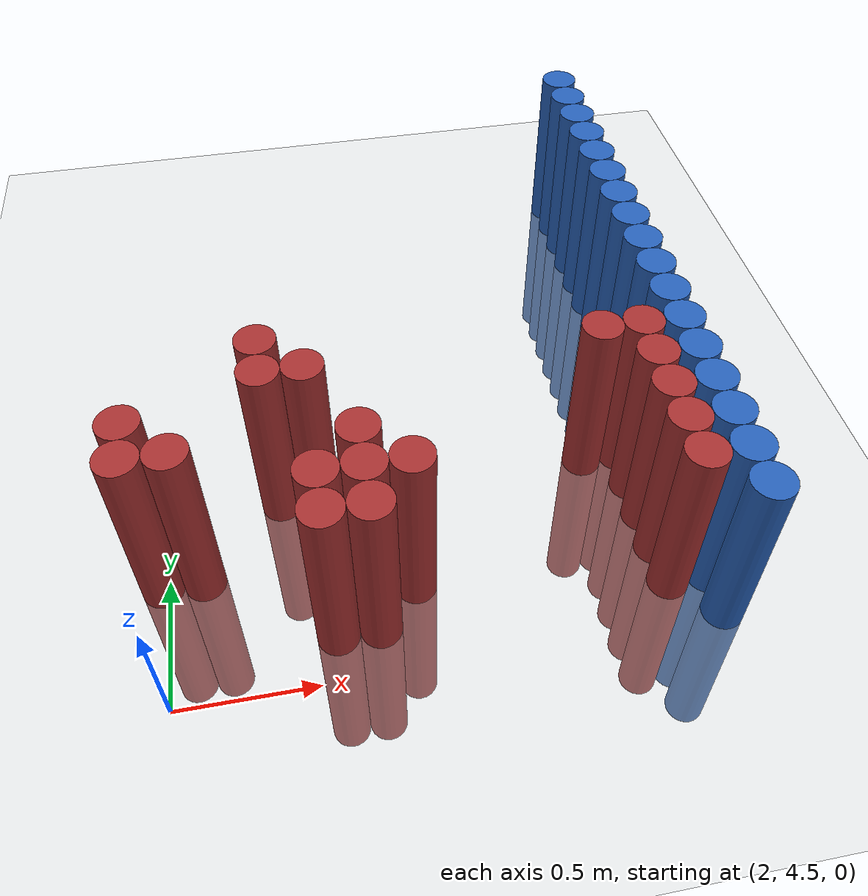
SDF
<sdf version="1.6">
 <world name="default">
  <model name="ground_plane">
   <static>1</static>
   <link name="link">
    <collision name="collision">
     <geometry><plane><normal>0 0 1</normal><size>100 100</size></plane></geometry>
     <surface><friction><ode><mu>100</mu><mu2>50</mu2></ode></friction></surface>
    </collision>
    <visual name="visual">
     <cast_shadows>0</cast_shadows>
     <geometry><plane><normal>0 0 1</normal><size>100 100</size></plane></geometry>
     <material>
      <script><uri>file://media/materials/scripts/gazebo.material</uri><name>Gazebo/Grey</name></script>
     </material>
    </visual>
   </link>
  </model>
  <model name="unit_cylinder_176">
   <static>1</static>
   <pose>3.925000 4.675000 0.000000 0.000000 0.000000 0.000000</pose>
   <link name="link">
    <inertial>
     <mass>1</mass>
     <inertia><ixx>0.145833</ixx><ixy>0</ixy><ixz>0</ixz><iyy>0.145833</iyy><iyz>0</iyz><izz>0.125</izz></inertia>
    </inertial>
    <collision name="collision">
     <geometry><cylinder><radius>0.075000</radius><length>1.5</length></cylinder></geometry>
    </collision>
    <visual name="visual">
     <geometry><cylinder><radius>0.075000</radius><length>1.5</length></cylinder></geometry>
     <material>
      <ambient>0.152000 0.379000 0.720000 1</ambient>
      <diffuse>0.152000 0.379000 0.720000 1</diffuse>
     </material>
     <material>
      <script><name>Gazebo/Grey</name><uri>file://media/materials/scripts/gazebo.material</uri></script>
     </material>
    </visual>
   </link>
  </model>
  <model name="unit_cylinder_178">
   <static>1</static>
   <pose>3.925000 4.825000 0.000000 0.000000 0.000000 0.000000</pose>
   <link name="link">
    <inertial>
     <mass>1</mass>
     <inertia><ixx>0.145833</ixx><ixy>0</ixy><ixz>0</ixz><iyy>0.145833</iyy><iyz>0</iyz><izz>0.125</izz></inertia>
    </inertial>
    <collision name="collision">
     <geometry><cylinder><radius>0.075000</radius><length>1.5</length></cylinder></geometry>
    </collision>
    <visual name="visual">
     <geometry><cylinder><radius>0.075000</radius><length>1.5</length></cylinder></geometry>
     <material>
      <ambient>0.152000 0.379000 0.720000 1</ambient>
      <diffuse>0.152000 0.379000 0.720000 1</diffuse>
     </material>
     <material>
      <script><name>Gazebo/Grey</name><uri>file://media/materials/scripts/gazebo.material</uri></script>
     </material>
    </visual>
   </link>
  </model>
  <model name="unit_cylinder_180">
   <static>1</static>
   <pose>3.925000 4.975000 0.000000 0.000000 0.000000 0.000000</pose>
   <link name="link">
    <inertial>
     <mass>1</mass>
     <inertia><ixx>0.145833</ixx><ixy>0</ixy><ixz>0</ixz><iyy>0.145833</iyy><iyz>0</iyz><izz>0.125</izz></inertia>
    </inertial>
    <collision name="collision">
     <geometry><cylinder><radius>0.075000</radius><length>1.5</length></cylinder></geometry>
    </collision>
    <visual name="visual">
     <geometry><cylinder><radius>0.075000</radius><length>1.5</length></cylinder></geometry>
     <material>
      <ambient>0.152000 0.379000 0.720000 1</ambient>
      <diffuse>0.152000 0.379000 0.720000 1</diffuse>
     </material>
     <material>
      <script><name>Gazebo/Grey</name><uri>file://media/materials/scripts/gazebo.material</uri></script>
     </material>
    </visual>
   </link>
  </model>
  <model name="unit_cylinder_182">
   <static>1</static>
   <pose>3.925000 5.125000 0.000000 0.000000 0.000000 0.000000</pose>
   <link name="link">
    <inertial>
     <mass>1</mass>
     <inertia><ixx>0.145833</ixx><ixy>0</ixy><ixz>0</ixz><iyy>0.145833</iyy><iyz>0</iyz><izz>0.125</izz></inertia>
    </inertial>
    <collision name="collision">
     <geometry><cylinder><radius>0.075000</radius><length>1.5</length></cylinder></geometry>
    </collision>
    <visual name="visual">
     <geometry><cylinder><radius>0.075000</radius><length>1.5</length></cylinder></geometry>
     <material>
      <ambient>0.152000 0.379000 0.720000 1</ambient>
      <diffuse>0.152000 0.379000 0.720000 1</diffuse>
     </material>
     <material>
      <script><name>Gazebo/Grey</name><uri>file://media/materials/scripts/gazebo.material</uri></script>
     </material>
    </visual>
   </link>
  </model>
  <model name="unit_cylinder_184">
   <static>1</static>
   <pose>3.925000 5.275000 0.000000 0.000000 0.000000 0.000000</pose>
   <link name="link">
    <inertial>
     <mass>1</mass>
     <inertia><ixx>0.145833</ixx><ixy>0</ixy><ixz>0</ixz><iyy>0.145833</iyy><iyz>0</iyz><izz>0.125</izz></inertia>
    </inertial>
    <collision name="collision">
     <geometry><cylinder><radius>0.075000</radius><length>1.5</length></cylinder></geometry>
    </collision>
    <visual name="visual">
     <geometry><cylinder><radius>0.075000</radius><length>1.5</length></cylinder></geometry>
     <material>
      <ambient>0.152000 0.379000 0.720000 1</ambient>
      <diffuse>0.152000 0.379000 0.720000 1</diffuse>
     </material>
     <material>
      <script><name>Gazebo/Grey</name><uri>file://media/materials/scripts/gazebo.material</uri></script>
     </material>
    </visual>
   </link>
  </model>
  <model name="unit_cylinder_186">
   <static>1</static>
   <pose>3.925000 5.425000 0.000000 0.000000 0.000000 0.000000</pose>
   <link name="link">
    <inertial>
     <mass>1</mass>
     <inertia><ixx>0.145833</ixx><ixy>0</ixy><ixz>0</ixz><iyy>0.145833</iyy><iyz>0</iyz><izz>0.125</izz></inertia>
    </inertial>
    <collision name="collision">
     <geometry><cylinder><radius>0.075000</radius><length>1.5</length></cylinder></geometry>
    </collision>
    <visual name="visual">
     <geometry><cylinder><radius>0.075000</radius><length>1.5</length></cylinder></geometry>
     <material>
      <ambient>0.152000 0.379000 0.720000 1</ambient>
      <diffuse>0.152000 0.379000 0.720000 1</diffuse>
     </material>
     <material>
      <script><name>Gazebo/Grey</name><uri>file://media/materials/scripts/gazebo.material</uri></script>
     </material>
    </visual>
   </link>
  </model>
  <model name="unit_cylinder_188">
   <static>1</static>
   <pose>3.925000 5.575000 0.000000 0.000000 0.000000 0.000000</pose>
   <link name="link">
    <inertial>
     <mass>1</mass>
     <inertia><ixx>0.145833</ixx><ixy>0</ixy><ixz>0</ixz><iyy>0.145833</iyy><iyz>0</iyz><izz>0.125</izz></inertia>
    </inertial>
    <collision name="collision">
     <geometry><cylinder><radius>0.075000</radius><length>1.5</length></cylinder></geometry>
    </collision>
    <visual name="visual">
     <geometry><cylinder><radius>0.075000</radius><length>1.5</length></cylinder></geometry>
     <material>
      <ambient>0.152000 0.379000 0.720000 1</ambient>
      <diffuse>0.152000 0.379000 0.720000 1</diffuse>
     </material>
     <material>
      <script><name>Gazebo/Grey</name><uri>file://media/materials/scripts/gazebo.material</uri></script>
     </material>
    </visual>
   </link>
  </model>
  <model name="unit_cylinder_190">
   <static>1</static>
   <pose>3.925000 5.725000 0.000000 0.000000 0.000000 0.000000</pose>
   <link name="link">
    <inertial>
     <mass>1</mass>
     <inertia><ixx>0.145833</ixx><ixy>0</ixy><ixz>0</ixz><iyy>0.145833</iyy><iyz>0</iyz><izz>0.125</izz></inertia>
    </inertial>
    <collision name="collision">
     <geometry><cylinder><radius>0.075000</radius><length>1.5</length></cylinder></geometry>
    </collision>
    <visual name="visual">
     <geometry><cylinder><radius>0.075000</radius><length>1.5</length></cylinder></geometry>
     <material>
      <ambient>0.152000 0.379000 0.720000 1</ambient>
      <diffuse>0.152000 0.379000 0.720000 1</diffuse>
     </material>
     <material>
      <script><name>Gazebo/Grey</name><uri>file://media/materials/scripts/gazebo.material</uri></script>
     </material>
    </visual>
   </link>
  </model>
  <model name="unit_cylinder_192">
   <static>1</static>
   <pose>3.925000 5.875000 0.000000 0.000000 0.000000 0.000000</pose>
   <link name="link">
    <inertial>
     <mass>1</mass>
     <inertia><ixx>0.145833</ixx><ixy>0</ixy><ixz>0</ixz><iyy>0.145833</iyy><iyz>0</iyz><izz>0.125</izz></inertia>
    </inertial>
    <collision name="collision">
     <geometry><cylinder><radius>0.075000</radius><length>1.5</length></cylinder></geometry>
    </collision>
    <visual name="visual">
     <geometry><cylinder><radius>0.075000</radius><length>1.5</length></cylinder></geometry>
     <material>
      <ambient>0.152000 0.379000 0.720000 1</ambient>
      <diffuse>0.152000 0.379000 0.720000 1</diffuse>
     </material>
     <material>
      <script><name>Gazebo/Grey</name><uri>file://media/materials/scripts/gazebo.material</uri></script>
     </material>
    </visual>
   </link>
  </model>
  <model name="unit_cylinder_194">
   <static>1</static>
   <pose>3.925000 6.025000 0.000000 0.000000 0.000000 0.000000</pose>
   <link name="link">
    <inertial>
     <mass>1</mass>
     <inertia><ixx>0.145833</ixx><ixy>0</ixy><ixz>0</ixz><iyy>0.145833</iyy><iyz>0</iyz><izz>0.125</izz></inertia>
    </inertial>
    <collision name="collision">
     <geometry><cylinder><radius>0.075000</radius><length>1.5</length></cylinder></geometry>
    </collision>
    <visual name="visual">
     <geometry><cylinder><radius>0.075000</radius><length>1.5</length></cylinder></geometry>
     <material>
      <ambient>0.152000 0.379000 0.720000 1</ambient>
      <diffuse>0.152000 0.379000 0.720000 1</diffuse>
     </material>
     <material>
      <script><name>Gazebo/Grey</name><uri>file://media/materials/scripts/gazebo.material</uri></script>
     </material>
    </visual>
   </link>
  </model>
  <model name="unit_cylinder_196">
   <static>1</static>
   <pose>3.925000 6.175000 0.000000 0.000000 0.000000 0.000000</pose>
   <link name="link">
    <inertial>
     <mass>1</mass>
     <inertia><ixx>0.145833</ixx><ixy>0</ixy><ixz>0</ixz><iyy>0.145833</iyy><iyz>0</iyz><izz>0.125</izz></inertia>
    </inertial>
    <collision name="collision">
     <geometry><cylinder><radius>0.075000</radius><length>1.5</length></cylinder></geometry>
    </collision>
    <visual name="visual">
     <geometry><cylinder><radius>0.075000</radius><length>1.5</length></cylinder></geometry>
     <material>
      <ambient>0.152000 0.379000 0.720000 1</ambient>
      <diffuse>0.152000 0.379000 0.720000 1</diffuse>
     </material>
     <material>
      <script><name>Gazebo/Grey</name><uri>file://media/materials/scripts/gazebo.material</uri></script>
     </material>
    </visual>
   </link>
  </model>
  <model name="unit_cylinder_198">
   <static>1</static>
   <pose>3.925000 6.325000 0.000000 0.000000 0.000000 0.000000</pose>
   <link name="link">
    <inertial>
     <mass>1</mass>
     <inertia><ixx>0.145833</ixx><ixy>0</ixy><ixz>0</ixz><iyy>0.145833</iyy><iyz>0</iyz><izz>0.125</izz></inertia>
    </inertial>
    <collision name="collision">
     <geometry><cylinder><radius>0.075000</radius><length>1.5</length></cylinder></geometry>
    </collision>
    <visual name="visual">
     <geometry><cylinder><radius>0.075000</radius><length>1.5</length></cylinder></geometry>
     <material>
      <ambient>0.152000 0.379000 0.720000 1</ambient>
      <diffuse>0.152000 0.379000 0.720000 1</diffuse>
     </material>
     <material>
      <script><name>Gazebo/Grey</name><uri>file://media/materials/scripts/gazebo.material</uri></script>
     </material>
    </visual>
   </link>
  </model>
  <model name="unit_cylinder_200">
   <static>1</static>
   <pose>3.925000 6.475000 0.000000 0.000000 0.000000 0.000000</pose>
   <link name="link">
    <inertial>
     <mass>1</mass>
     <inertia><ixx>0.145833</ixx><ixy>0</ixy><ixz>0</ixz><iyy>0.145833</iyy><iyz>0</iyz><izz>0.125</izz></inertia>
    </inertial>
    <collision name="collision">
     <geometry><cylinder><radius>0.075000</radius><length>1.5</length></cylinder></geometry>
    </collision>
    <visual name="visual">
     <geometry><cylinder><radius>0.075000</radius><length>1.5</length></cylinder></geometry>
     <material>
      <ambient>0.152000 0.379000 0.720000 1</ambient>
      <diffuse>0.152000 0.379000 0.720000 1</diffuse>
     </material>
     <material>
      <script><name>Gazebo/Grey</name><uri>file://media/materials/scripts/gazebo.material</uri></script>
     </material>
    </visual>
   </link>
  </model>
  <model name="unit_cylinder_202">
   <static>1</static>
   <pose>3.925000 6.625000 0.000000 0.000000 0.000000 0.000000</pose>
   <link name="link">
    <inertial>
     <mass>1</mass>
     <inertia><ixx>0.145833</ixx><ixy>0</ixy><ixz>0</ixz><iyy>0.145833</iyy><iyz>0</iyz><izz>0.125</izz></inertia>
    </inertial>
    <collision name="collision">
     <geometry><cylinder><radius>0.075000</radius><length>1.5</length></cylinder></geometry>
    </collision>
    <visual name="visual">
     <geometry><cylinder><radius>0.075000</radius><length>1.5</length></cylinder></geometry>
     <material>
      <ambient>0.152000 0.379000 0.720000 1</ambient>
      <diffuse>0.152000 0.379000 0.720000 1</diffuse>
     </material>
     <material>
      <script><name>Gazebo/Grey</name><uri>file://media/materials/scripts/gazebo.material</uri></script>
     </material>
    </visual>
   </link>
  </model>
  <model name="unit_cylinder_204">
   <static>1</static>
   <pose>3.925000 6.775000 0.000000 0.000000 0.000000 0.000000</pose>
   <link name="link">
    <inertial>
     <mass>1</mass>
     <inertia><ixx>0.145833</ixx><ixy>0</ixy><ixz>0</ixz><iyy>0.145833</iyy><iyz>0</iyz><izz>0.125</izz></inertia>
    </inertial>
    <collision name="collision">
     <geometry><cylinder><radius>0.075000</radius><length>1.5</length></cylinder></geometry>
    </collision>
    <visual name="visual">
     <geometry><cylinder><radius>0.075000</radius><length>1.5</length></cylinder></geometry>
     <material>
      <ambient>0.152000 0.379000 0.720000 1</ambient>
      <diffuse>0.152000 0.379000 0.720000 1</diffuse>
     </material>
     <material>
      <script><name>Gazebo/Grey</name><uri>file://media/materials/scripts/gazebo.material</uri></script>
     </material>
    </visual>
   </link>
  </model>
  <model name="unit_cylinder_206">
   <static>1</static>
   <pose>3.925000 6.925000 0.000000 0.000000 0.000000 0.000000</pose>
   <link name="link">
    <inertial>
     <mass>1</mass>
     <inertia><ixx>0.145833</ixx><ixy>0</ixy><ixz>0</ixz><iyy>0.145833</iyy><iyz>0</iyz><izz>0.125</izz></inertia>
    </inertial>
    <collision name="collision">
     <geometry><cylinder><radius>0.075000</radius><length>1.5</length></cylinder></geometry>
    </collision>
    <visual name="visual">
     <geometry><cylinder><radius>0.075000</radius><length>1.5</length></cylinder></geometry>
     <material>
      <ambient>0.152000 0.379000 0.720000 1</ambient>
      <diffuse>0.152000 0.379000 0.720000 1</diffuse>
     </material>
     <material>
      <script><name>Gazebo/Grey</name><uri>file://media/materials/scripts/gazebo.material</uri></script>
     </material>
    </visual>
   </link>
  </model>
  <model name="unit_cylinder_442">
   <static>1</static>
   <pose>1.975000 4.975000 0.000000 0.000000 0.000000 0.000000</pose>
   <link name="link">
    <inertial>
     <mass>1</mass>
     <inertia><ixx>0.145833</ixx><ixy>0</ixy><ixz>0</ixz><iyy>0.145833</iyy><iyz>0</iyz><izz>0.125</izz></inertia>
    </inertial>
    <collision name="collision">
     <geometry><cylinder><radius>0.075000</radius><length>1.5</length></cylinder></geometry>
    </collision>
    <visual name="visual">
     <geometry><cylinder><radius>0.075000</radius><length>1.5</length></cylinder></geometry>
     <material>
      <ambient>0.648000 0.192000 0.192000 1</ambient>
      <diffuse>0.648000 0.192000 0.192000 1</diffuse>
     </material>
     <material>
      <script><name>Gazebo/Grey</name><uri>file://media/materials/scripts/gazebo.material</uri></script>
     </material>
    </visual>
   </link>
  </model>
  <model name="unit_cylinder_443">
   <static>1</static>
   <pose>1.975000 5.125000 0.000000 0.000000 0.000000 0.000000</pose>
   <link name="link">
    <inertial>
     <mass>1</mass>
     <inertia><ixx>0.145833</ixx><ixy>0</ixy><ixz>0</ixz><iyy>0.145833</iyy><iyz>0</iyz><izz>0.125</izz></inertia>
    </inertial>
    <collision name="collision">
     <geometry><cylinder><radius>0.075000</radius><length>1.5</length></cylinder></geometry>
    </collision>
    <visual name="visual">
     <geometry><cylinder><radius>0.075000</radius><length>1.5</length></cylinder></geometry>
     <material>
      <ambient>0.648000 0.192000 0.192000 1</ambient>
      <diffuse>0.648000 0.192000 0.192000 1</diffuse>
     </material>
     <material>
      <script><name>Gazebo/Grey</name><uri>file://media/materials/scripts/gazebo.material</uri></script>
     </material>
    </visual>
   </link>
  </model>
  <model name="unit_cylinder_454">
   <static>1</static>
   <pose>2.125000 4.975000 0.000000 0.000000 0.000000 0.000000</pose>
   <link name="link">
    <inertial>
     <mass>1</mass>
     <inertia><ixx>0.145833</ixx><ixy>0</ixy><ixz>0</ixz><iyy>0.145833</iyy><iyz>0</iyz><izz>0.125</izz></inertia>
    </inertial>
    <collision name="collision">
     <geometry><cylinder><radius>0.075000</radius><length>1.5</length></cylinder></geometry>
    </collision>
    <visual name="visual">
     <geometry><cylinder><radius>0.075000</radius><length>1.5</length></cylinder></geometry>
     <material>
      <ambient>0.648000 0.192000 0.192000 1</ambient>
      <diffuse>0.648000 0.192000 0.192000 1</diffuse>
     </material>
     <material>
      <script><name>Gazebo/Grey</name><uri>file://media/materials/scripts/gazebo.material</uri></script>
     </material>
    </visual>
   </link>
  </model>
  <model name="unit_cylinder_473">
   <static>1</static>
   <pose>2.425000 5.275000 0.000000 0.000000 0.000000 0.000000</pose>
   <link name="link">
    <inertial>
     <mass>1</mass>
     <inertia><ixx>0.145833</ixx><ixy>0</ixy><ixz>0</ixz><iyy>0.145833</iyy><iyz>0</iyz><izz>0.125</izz></inertia>
    </inertial>
    <collision name="collision">
     <geometry><cylinder><radius>0.075000</radius><length>1.5</length></cylinder></geometry>
    </collision>
    <visual name="visual">
     <geometry><cylinder><radius>0.075000</radius><length>1.5</length></cylinder></geometry>
     <material>
      <ambient>0.648000 0.192000 0.192000 1</ambient>
      <diffuse>0.648000 0.192000 0.192000 1</diffuse>
     </material>
     <material>
      <script><name>Gazebo/Grey</name><uri>file://media/materials/scripts/gazebo.material</uri></script>
     </material>
    </visual>
   </link>
  </model>
  <model name="unit_cylinder_474">
   <static>1</static>
   <pose>2.425000 5.425000 0.000000 0.000000 0.000000 0.000000</pose>
   <link name="link">
    <inertial>
     <mass>1</mass>
     <inertia><ixx>0.145833</ixx><ixy>0</ixy><ixz>0</ixz><iyy>0.145833</iyy><iyz>0</iyz><izz>0.125</izz></inertia>
    </inertial>
    <collision name="collision">
     <geometry><cylinder><radius>0.075000</radius><length>1.5</length></cylinder></geometry>
    </collision>
    <visual name="visual">
     <geometry><cylinder><radius>0.075000</radius><length>1.5</length></cylinder></geometry>
     <material>
      <ambient>0.648000 0.192000 0.192000 1</ambient>
      <diffuse>0.648000 0.192000 0.192000 1</diffuse>
     </material>
     <material>
      <script><name>Gazebo/Grey</name><uri>file://media/materials/scripts/gazebo.material</uri></script>
     </material>
    </visual>
   </link>
  </model>
  <model name="unit_cylinder_483">
   <static>1</static>
   <pose>2.575000 4.675000 0.000000 0.000000 0.000000 0.000000</pose>
   <link name="link">
    <inertial>
     <mass>1</mass>
     <inertia><ixx>0.145833</ixx><ixy>0</ixy><ixz>0</ixz><iyy>0.145833</iyy><iyz>0</iyz><izz>0.125</izz></inertia>
    </inertial>
    <collision name="collision">
     <geometry><cylinder><radius>0.075000</radius><length>1.5</length></cylinder></geometry>
    </collision>
    <visual name="visual">
     <geometry><cylinder><radius>0.075000</radius><length>1.5</length></cylinder></geometry>
     <material>
      <ambient>0.648000 0.192000 0.192000 1</ambient>
      <diffuse>0.648000 0.192000 0.192000 1</diffuse>
     </material>
     <material>
      <script><name>Gazebo/Grey</name><uri>file://media/materials/scripts/gazebo.material</uri></script>
     </material>
    </visual>
   </link>
  </model>
  <model name="unit_cylinder_484">
   <static>1</static>
   <pose>2.575000 4.825000 0.000000 0.000000 0.000000 0.000000</pose>
   <link name="link">
    <inertial>
     <mass>1</mass>
     <inertia><ixx>0.145833</ixx><ixy>0</ixy><ixz>0</ixz><iyy>0.145833</iyy><iyz>0</iyz><izz>0.125</izz></inertia>
    </inertial>
    <collision name="collision">
     <geometry><cylinder><radius>0.075000</radius><length>1.5</length></cylinder></geometry>
    </collision>
    <visual name="visual">
     <geometry><cylinder><radius>0.075000</radius><length>1.5</length></cylinder></geometry>
     <material>
      <ambient>0.648000 0.192000 0.192000 1</ambient>
      <diffuse>0.648000 0.192000 0.192000 1</diffuse>
     </material>
     <material>
      <script><name>Gazebo/Grey</name><uri>file://media/materials/scripts/gazebo.material</uri></script>
     </material>
    </visual>
   </link>
  </model>
  <model name="unit_cylinder_485">
   <static>1</static>
   <pose>2.575000 5.275000 0.000000 0.000000 0.000000 0.000000</pose>
   <link name="link">
    <inertial>
     <mass>1</mass>
     <inertia><ixx>0.145833</ixx><ixy>0</ixy><ixz>0</ixz><iyy>0.145833</iyy><iyz>0</iyz><izz>0.125</izz></inertia>
    </inertial>
    <collision name="collision">
     <geometry><cylinder><radius>0.075000</radius><length>1.5</length></cylinder></geometry>
    </collision>
    <visual name="visual">
     <geometry><cylinder><radius>0.075000</radius><length>1.5</length></cylinder></geometry>
     <material>
      <ambient>0.648000 0.192000 0.192000 1</ambient>
      <diffuse>0.648000 0.192000 0.192000 1</diffuse>
     </material>
     <material>
      <script><name>Gazebo/Grey</name><uri>file://media/materials/scripts/gazebo.material</uri></script>
     </material>
    </visual>
   </link>
  </model>
  <model name="unit_cylinder_497">
   <static>1</static>
   <pose>2.725000 4.675000 0.000000 0.000000 0.000000 0.000000</pose>
   <link name="link">
    <inertial>
     <mass>1</mass>
     <inertia><ixx>0.145833</ixx><ixy>0</ixy><ixz>0</ixz><iyy>0.145833</iyy><iyz>0</iyz><izz>0.125</izz></inertia>
    </inertial>
    <collision name="collision">
     <geometry><cylinder><radius>0.075000</radius><length>1.5</length></cylinder></geometry>
    </collision>
    <visual name="visual">
     <geometry><cylinder><radius>0.075000</radius><length>1.5</length></cylinder></geometry>
     <material>
      <ambient>0.648000 0.192000 0.192000 1</ambient>
      <diffuse>0.648000 0.192000 0.192000 1</diffuse>
     </material>
     <material>
      <script><name>Gazebo/Grey</name><uri>file://media/materials/scripts/gazebo.material</uri></script>
     </material>
    </visual>
   </link>
  </model>
  <model name="unit_cylinder_498">
   <static>1</static>
   <pose>2.725000 4.825000 0.000000 0.000000 0.000000 0.000000</pose>
   <link name="link">
    <inertial>
     <mass>1</mass>
     <inertia><ixx>0.145833</ixx><ixy>0</ixy><ixz>0</ixz><iyy>0.145833</iyy><iyz>0</iyz><izz>0.125</izz></inertia>
    </inertial>
    <collision name="collision">
     <geometry><cylinder><radius>0.075000</radius><length>1.5</length></cylinder></geometry>
    </collision>
    <visual name="visual">
     <geometry><cylinder><radius>0.075000</radius><length>1.5</length></cylinder></geometry>
     <material>
      <ambient>0.648000 0.192000 0.192000 1</ambient>
      <diffuse>0.648000 0.192000 0.192000 1</diffuse>
     </material>
     <material>
      <script><name>Gazebo/Grey</name><uri>file://media/materials/scripts/gazebo.material</uri></script>
     </material>
    </visual>
   </link>
  </model>
  <model name="unit_cylinder_499">
   <static>1</static>
   <pose>2.725000 4.975000 0.000000 0.000000 0.000000 0.000000</pose>
   <link name="link">
    <inertial>
     <mass>1</mass>
     <inertia><ixx>0.145833</ixx><ixy>0</ixy><ixz>0</ixz><iyy>0.145833</iyy><iyz>0</iyz><izz>0.125</izz></inertia>
    </inertial>
    <collision name="collision">
     <geometry><cylinder><radius>0.075000</radius><length>1.5</length></cylinder></geometry>
    </collision>
    <visual name="visual">
     <geometry><cylinder><radius>0.075000</radius><length>1.5</length></cylinder></geometry>
     <material>
      <ambient>0.648000 0.192000 0.192000 1</ambient>
      <diffuse>0.648000 0.192000 0.192000 1</diffuse>
     </material>
     <material>
      <script><name>Gazebo/Grey</name><uri>file://media/materials/scripts/gazebo.material</uri></script>
     </material>
    </visual>
   </link>
  </model>
  <model name="unit_cylinder_513">
   <static>1</static>
   <pose>2.875000 4.825000 0.000000 0.000000 0.000000 0.000000</pose>
   <link name="link">
    <inertial>
     <mass>1</mass>
     <inertia><ixx>0.145833</ixx><ixy>0</ixy><ixz>0</ixz><iyy>0.145833</iyy><iyz>0</iyz><izz>0.125</izz></inertia>
    </inertial>
    <collision name="collision">
     <geometry><cylinder><radius>0.075000</radius><length>1.5</length></cylinder></geometry>
    </collision>
    <visual name="visual">
     <geometry><cylinder><radius>0.075000</radius><length>1.5</length></cylinder></geometry>
     <material>
      <ambient>0.648000 0.192000 0.192000 1</ambient>
      <diffuse>0.648000 0.192000 0.192000 1</diffuse>
     </material>
     <material>
      <script><name>Gazebo/Grey</name><uri>file://media/materials/scripts/gazebo.material</uri></script>
     </material>
    </visual>
   </link>
  </model>
  <model name="unit_cylinder_573">
   <static>1</static>
   <pose>3.625000 5.275000 0.000000 0.000000 0.000000 0.000000</pose>
   <link name="link">
    <inertial>
     <mass>1</mass>
     <inertia><ixx>0.145833</ixx><ixy>0</ixy><ixz>0</ixz><iyy>0.145833</iyy><iyz>0</iyz><izz>0.125</izz></inertia>
    </inertial>
    <collision name="collision">
     <geometry><cylinder><radius>0.075000</radius><length>1.5</length></cylinder></geometry>
    </collision>
    <visual name="visual">
     <geometry><cylinder><radius>0.075000</radius><length>1.5</length></cylinder></geometry>
     <material>
      <ambient>0.648000 0.192000 0.192000 1</ambient>
      <diffuse>0.648000 0.192000 0.192000 1</diffuse>
     </material>
     <material>
      <script><name>Gazebo/Grey</name><uri>file://media/materials/scripts/gazebo.material</uri></script>
     </material>
    </visual>
   </link>
  </model>
  <model name="unit_cylinder_598">
   <static>1</static>
   <pose>3.775000 4.675000 0.000000 0.000000 0.000000 0.000000</pose>
   <link name="link">
    <inertial>
     <mass>1</mass>
     <inertia><ixx>0.145833</ixx><ixy>0</ixy><ixz>0</ixz><iyy>0.145833</iyy><iyz>0</iyz><izz>0.125</izz></inertia>
    </inertial>
    <collision name="collision">
     <geometry><cylinder><radius>0.075000</radius><length>1.5</length></cylinder></geometry>
    </collision>
    <visual name="visual">
     <geometry><cylinder><radius>0.075000</radius><length>1.5</length></cylinder></geometry>
     <material>
      <ambient>0.648000 0.192000 0.192000 1</ambient>
      <diffuse>0.648000 0.192000 0.192000 1</diffuse>
     </material>
     <material>
      <script><name>Gazebo/Grey</name><uri>file://media/materials/scripts/gazebo.material</uri></script>
     </material>
    </visual>
   </link>
  </model>
  <model name="unit_cylinder_599">
   <static>1</static>
   <pose>3.775000 4.825000 0.000000 0.000000 0.000000 0.000000</pose>
   <link name="link">
    <inertial>
     <mass>1</mass>
     <inertia><ixx>0.145833</ixx><ixy>0</ixy><ixz>0</ixz><iyy>0.145833</iyy><iyz>0</iyz><izz>0.125</izz></inertia>
    </inertial>
    <collision name="collision">
     <geometry><cylinder><radius>0.075000</radius><length>1.5</length></cylinder></geometry>
    </collision>
    <visual name="visual">
     <geometry><cylinder><radius>0.075000</radius><length>1.5</length></cylinder></geometry>
     <material>
      <ambient>0.648000 0.192000 0.192000 1</ambient>
      <diffuse>0.648000 0.192000 0.192000 1</diffuse>
     </material>
     <material>
      <script><name>Gazebo/Grey</name><uri>file://media/materials/scripts/gazebo.material</uri></script>
     </material>
    </visual>
   </link>
  </model>
  <model name="unit_cylinder_600">
   <static>1</static>
   <pose>3.775000 4.975000 0.000000 0.000000 0.000000 0.000000</pose>
   <link name="link">
    <inertial>
     <mass>1</mass>
     <inertia><ixx>0.145833</ixx><ixy>0</ixy><ixz>0</ixz><iyy>0.145833</iyy><iyz>0</iyz><izz>0.125</izz></inertia>
    </inertial>
    <collision name="collision">
     <geometry><cylinder><radius>0.075000</radius><length>1.5</length></cylinder></geometry>
    </collision>
    <visual name="visual">
     <geometry><cylinder><radius>0.075000</radius><length>1.5</length></cylinder></geometry>
     <material>
      <ambient>0.648000 0.192000 0.192000 1</ambient>
      <diffuse>0.648000 0.192000 0.192000 1</diffuse>
     </material>
     <material>
      <script><name>Gazebo/Grey</name><uri>file://media/materials/scripts/gazebo.material</uri></script>
     </material>
    </visual>
   </link>
  </model>
  <model name="unit_cylinder_601">
   <static>1</static>
   <pose>3.775000 5.125000 0.000000 0.000000 0.000000 0.000000</pose>
   <link name="link">
    <inertial>
     <mass>1</mass>
     <inertia><ixx>0.145833</ixx><ixy>0</ixy><ixz>0</ixz><iyy>0.145833</iyy><iyz>0</iyz><izz>0.125</izz></inertia>
    </inertial>
    <collision name="collision">
     <geometry><cylinder><radius>0.075000</radius><length>1.5</length></cylinder></geometry>
    </collision>
    <visual name="visual">
     <geometry><cylinder><radius>0.075000</radius><length>1.5</length></cylinder></geometry>
     <material>
      <ambient>0.648000 0.192000 0.192000 1</ambient>
      <diffuse>0.648000 0.192000 0.192000 1</diffuse>
     </material>
     <material>
      <script><name>Gazebo/Grey</name><uri>file://media/materials/scripts/gazebo.material</uri></script>
     </material>
    </visual>
   </link>
  </model>
  <model name="unit_cylinder_602">
   <static>1</static>
   <pose>3.775000 5.275000 0.000000 0.000000 0.000000 0.000000</pose>
   <link name="link">
    <inertial>
     <mass>1</mass>
     <inertia><ixx>0.145833</ixx><ixy>0</ixy><ixz>0</ixz><iyy>0.145833</iyy><iyz>0</iyz><izz>0.125</izz></inertia>
    </inertial>
    <collision name="collision">
     <geometry><cylinder><radius>0.075000</radius><length>1.5</length></cylinder></geometry>
    </collision>
    <visual name="visual">
     <geometry><cylinder><radius>0.075000</radius><length>1.5</length></cylinder></geometry>
     <material>
      <ambient>0.648000 0.192000 0.192000 1</ambient>
      <diffuse>0.648000 0.192000 0.192000 1</diffuse>
     </material>
     <material>
      <script><name>Gazebo/Grey</name><uri>file://media/materials/scripts/gazebo.material</uri></script>
     </material>
    </visual>
   </link>
  </model>
  <model name="unit_cylinder_646">
   <static>1</static>
   <pose>3.925000 4.525000 0.000000 0.000000 0.000000 0.000000</pose>
   <link name="link">
    <inertial>
     <mass>1</mass>
     <inertia><ixx>0.145833</ixx><ixy>0</ixy><ixz>0</ixz><iyy>0.145833</iyy><iyz>0</iyz><izz>0.125</izz></inertia>
    </inertial>
    <collision name="collision">
     <geometry><cylinder><radius>0.075000</radius><length>1.5</length></cylinder></geometry>
    </collision>
    <visual name="visual">
     <geometry><cylinder><radius>0.075000</radius><length>1.5</length></cylinder></geometry>
     <material>
      <ambient>0.152000 0.379000 0.720000 1</ambient>
      <diffuse>0.152000 0.379000 0.720000 1</diffuse>
     </material>
     <material>
      <script><name>Gazebo/Grey</name><uri>file://media/materials/scripts/gazebo.material</uri></script>
     </material>
    </visual>
   </link>
  </model>
  <model name="unit_cylinder_647">
   <static>1</static>
   <pose>3.925000 4.675000 0.000000 0.000000 0.000000 0.000000</pose>
   <link name="link">
    <inertial>
     <mass>1</mass>
     <inertia><ixx>0.145833</ixx><ixy>0</ixy><ixz>0</ixz><iyy>0.145833</iyy><iyz>0</iyz><izz>0.125</izz></inertia>
    </inertial>
    <collision name="collision">
     <geometry><cylinder><radius>0.075000</radius><length>1.5</length></cylinder></geometry>
    </collision>
    <visual name="visual">
     <geometry><cylinder><radius>0.075000</radius><length>1.5</length></cylinder></geometry>
     <material>
      <ambient>0.152000 0.379000 0.720000 1</ambient>
      <diffuse>0.152000 0.379000 0.720000 1</diffuse>
     </material>
     <material>
      <script><name>Gazebo/Grey</name><uri>file://media/materials/scripts/gazebo.material</uri></script>
     </material>
    </visual>
   </link>
  </model>
  <model name="unit_cylinder_648">
   <static>1</static>
   <pose>3.925000 4.825000 0.000000 0.000000 0.000000 0.000000</pose>
   <link name="link">
    <inertial>
     <mass>1</mass>
     <inertia><ixx>0.145833</ixx><ixy>0</ixy><ixz>0</ixz><iyy>0.145833</iyy><iyz>0</iyz><izz>0.125</izz></inertia>
    </inertial>
    <collision name="collision">
     <geometry><cylinder><radius>0.075000</radius><length>1.5</length></cylinder></geometry>
    </collision>
    <visual name="visual">
     <geometry><cylinder><radius>0.075000</radius><length>1.5</length></cylinder></geometry>
     <material>
      <ambient>0.152000 0.379000 0.720000 1</ambient>
      <diffuse>0.152000 0.379000 0.720000 1</diffuse>
     </material>
     <material>
      <script><name>Gazebo/Grey</name><uri>file://media/materials/scripts/gazebo.material</uri></script>
     </material>
    </visual>
   </link>
  </model>
  <model name="unit_cylinder_649">
   <static>1</static>
   <pose>3.925000 4.975000 0.000000 0.000000 0.000000 0.000000</pose>
   <link name="link">
    <inertial>
     <mass>1</mass>
     <inertia><ixx>0.145833</ixx><ixy>0</ixy><ixz>0</ixz><iyy>0.145833</iyy><iyz>0</iyz><izz>0.125</izz></inertia>
    </inertial>
    <collision name="collision">
     <geometry><cylinder><radius>0.075000</radius><length>1.5</length></cylinder></geometry>
    </collision>
    <visual name="visual">
     <geometry><cylinder><radius>0.075000</radius><length>1.5</length></cylinder></geometry>
     <material>
      <ambient>0.152000 0.379000 0.720000 1</ambient>
      <diffuse>0.152000 0.379000 0.720000 1</diffuse>
     </material>
     <material>
      <script><name>Gazebo/Grey</name><uri>file://media/materials/scripts/gazebo.material</uri></script>
     </material>
    </visual>
   </link>
  </model>
  <model name="unit_cylinder_650">
   <static>1</static>
   <pose>3.925000 5.125000 0.000000 0.000000 0.000000 0.000000</pose>
   <link name="link">
    <inertial>
     <mass>1</mass>
     <inertia><ixx>0.145833</ixx><ixy>0</ixy><ixz>0</ixz><iyy>0.145833</iyy><iyz>0</iyz><izz>0.125</izz></inertia>
    </inertial>
    <collision name="collision">
     <geometry><cylinder><radius>0.075000</radius><length>1.5</length></cylinder></geometry>
    </collision>
    <visual name="visual">
     <geometry><cylinder><radius>0.075000</radius><length>1.5</length></cylinder></geometry>
     <material>
      <ambient>0.152000 0.379000 0.720000 1</ambient>
      <diffuse>0.152000 0.379000 0.720000 1</diffuse>
     </material>
     <material>
      <script><name>Gazebo/Grey</name><uri>file://media/materials/scripts/gazebo.material</uri></script>
     </material>
    </visual>
   </link>
  </model>
  <model name="unit_cylinder_651">
   <static>1</static>
   <pose>3.925000 5.275000 0.000000 0.000000 0.000000 0.000000</pose>
   <link name="link">
    <inertial>
     <mass>1</mass>
     <inertia><ixx>0.145833</ixx><ixy>0</ixy><ixz>0</ixz><iyy>0.145833</iyy><iyz>0</iyz><izz>0.125</izz></inertia>
    </inertial>
    <collision name="collision">
     <geometry><cylinder><radius>0.075000</radius><length>1.5</length></cylinder></geometry>
    </collision>
    <visual name="visual">
     <geometry><cylinder><radius>0.075000</radius><length>1.5</length></cylinder></geometry>
     <material>
      <ambient>0.152000 0.379000 0.720000 1</ambient>
      <diffuse>0.152000 0.379000 0.720000 1</diffuse>
     </material>
     <material>
      <script><name>Gazebo/Grey</name><uri>file://media/materials/scripts/gazebo.material</uri></script>
     </material>
    </visual>
   </link>
  </model>
  <model name="unit_cylinder_652">
   <static>1</static>
   <pose>3.925000 5.425000 0.000000 0.000000 0.000000 0.000000</pose>
   <link name="link">
    <inertial>
     <mass>1</mass>
     <inertia><ixx>0.145833</ixx><ixy>0</ixy><ixz>0</ixz><iyy>0.145833</iyy><iyz>0</iyz><izz>0.125</izz></inertia>
    </inertial>
    <collision name="collision">
     <geometry><cylinder><radius>0.075000</radius><length>1.5</length></cylinder></geometry>
    </collision>
    <visual name="visual">
     <geometry><cylinder><radius>0.075000</radius><length>1.5</length></cylinder></geometry>
     <material>
      <ambient>0.152000 0.379000 0.720000 1</ambient>
      <diffuse>0.152000 0.379000 0.720000 1</diffuse>
     </material>
     <material>
      <script><name>Gazebo/Grey</name><uri>file://media/materials/scripts/gazebo.material</uri></script>
     </material>
    </visual>
   </link>
  </model>
 </world>
</sdf>
